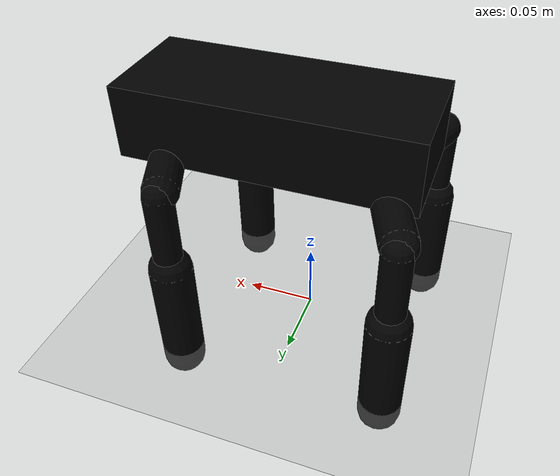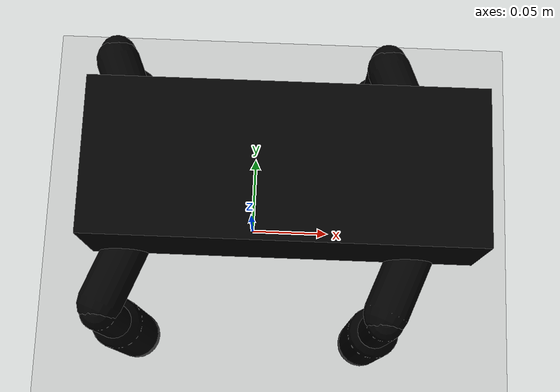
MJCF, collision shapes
<mujoco model="xgo">
  <compiler angle="radian" meshdir="XGO"/>
  <option gravity="0 0 -9.81" timestep="0.002" iterations="100"/>

  <default>
    <joint damping="2.0" armature="0.01"/>
    <geom contype="0" conaffinity="0"/>
    <position kp="40" forcerange="-25 25" ctrlrange="-1.57 1.57"/>
  </default>

  <asset>
    <texture name="floor_checker" type="2d" builtin="checker"
             rgb1="0.8 0.8 0.8" rgb2="0.5 0.5 0.5" width="512" height="512"/>
    <material name="floor_mat" texture="floor_checker" texrepeat="10 10" reflectance="0.0"/>

    <mesh name="base_link" content_type="model/stl" file="base_link.STL"/>
    <mesh name="lf_hip_link" content_type="model/stl" file="lf_hip_link.STL"/>
    <mesh name="lf_upper_leg_link" content_type="model/stl" file="lf_upper_leg_link.STL"/>
    <mesh name="lf_lower_leg_link" content_type="model/stl" file="lf_lower_leg_link.STL"/>
    <mesh name="rf_hip_link" content_type="model/stl" file="rf_hip_link.STL"/>
    <mesh name="rf_upper_leg_link" content_type="model/stl" file="rf_upper_leg_link.STL"/>
    <mesh name="rf_lower_leg_link" content_type="model/stl" file="rf_lower_leg_link.STL"/>
    <mesh name="lh_hip_link" content_type="model/stl" file="lh_hip_link.STL"/>
    <mesh name="lh_upper_leg_link" content_type="model/stl" file="lh_upper_leg_link.STL"/>
    <mesh name="lh_lower_leg_link" content_type="model/stl" file="lh_lower_leg_link.STL"/>
    <mesh name="rh_hip_link" content_type="model/stl" file="rh_hip_link.STL"/>
    <mesh name="rh_upper_leg_link" content_type="model/stl" file="rh_upper_leg_link.STL"/>
    <mesh name="rh_lower_leg_link" content_type="model/stl" file="rh_lower_leg_link.STL"/>
    <mesh name="camera_link" content_type="model/stl" file="camera_link.STL"/>
    <mesh name="laser_link" content_type="model/stl" file="laser_link.STL"/>
  </asset>

  <worldbody>
    <geom name="floor"
          type="plane"
          pos="0 0 0"
          size="20 20 0.1"
          material="floor_mat"
          contype="1"
          conaffinity="1"
          friction="2.0 0.5 0.5"/>

    <body name="base" pos="0 0 0.108">
      <freejoint/>
      <camera name="track" mode="trackcom" pos="0 -3.0 1.5" xyaxes="1 0 0 0 1 2"/>
      <!-- added a site for the imu on the robot to sit for sensor data -->
      <site name="imu_site" pos="0 0 0.02" size="0.01"/>

      <!-- inercia aproximada para debug -->
      <inertial pos="0 0 0.02"
                mass="0.8"
                diaginertia="0.003 0.008 0.009"/>

      <!-- visual -->
      <geom pos="0 0 0.01" quat="1 0 0 0" type="mesh" rgba="0.529412 0.54902 0.54902 1" mesh="base_link"/>
      <geom pos="0.075751 0 0.069653" type="mesh" rgba="0.054902 0.054902 0.054902 1" mesh="camera_link"/>
      <geom pos="-0.016732 4.4164e-05 0.11335" quat="1 0 0 0" type="mesh" rgba="1 1 1 1" mesh="laser_link"/>

      <!-- colisión simple base -->
      <geom type="box" pos="0.02 0 0.05" size="0.1 0.04 0.025"
            rgba="0 0 0 0" contype="1" conaffinity="1"/>

      <!-- LF -->
      <body name="lf_hip_link" pos="0.09332 0.022407 0.02454">
        <inertial pos="-0.013972 0.0250894 0.00927329"
                  quat="0.465985 0.505856 -0.63261 0.356052"
                  mass="0.0196003"
                  diaginertia="7.28129e-06 6.03463e-06 3.25491e-06"/>
        <joint name="lf_hip_joint" axis="-1 0 0" range="-1.57 1.57"/>
        <geom type="mesh" rgba="0.898039 0.917647 0.929412 1" mesh="lf_hip_link"/>
        <geom type="capsule" fromto="0 0 0 -0.018 0.045 0" size="0.012"
              rgba="0 0 0 0" contype="1" conaffinity="1"/>

        <body name="lf_upper_leg_link" pos="-0.018325 0.049313 0">
          <inertial pos="-0.00689428 -0.01867 -0.029948"
                    mass="0.0123429"
                    diaginertia="5.47497e-06 4.86024e-06 1.83455e-06"/>

          <joint name="lf_upper_leg_joint" axis="0 1 0" range="-1.57 1.57"/>
          <geom type="mesh" rgba="0.898039 0.917647 0.929412 1" mesh="lf_upper_leg_link"/>
          <geom type="capsule" fromto="0 0 0 0 0 -0.06" size="0.010"
                rgba="0 0 0 0" contype="1" conaffinity="1"/>

          <body name="lf_lower_leg_link" pos="0 -0.00072 -0.059896">
            <inertial pos="-0.0167812 -0.018325 -0.0316239"
                      quat="0.999267 0 0.0382793 0"
                      mass="0.0226879"
                      diaginertia="1.41901e-05 1.36483e-05 1.31741e-06"/>
            <joint name="lf_lower_leg_joint" axis="0 1 0" range="-1.57 1.57"/>
            <geom type="mesh" rgba="0.898039 0.917647 0.929412 1" mesh="lf_lower_leg_link"/>
            <geom type="capsule" fromto="0 0 0 0 0 -0.085" size="0.015"
                  rgba="0 0 0 0" contype="1" conaffinity="1"
                  friction="2.0 0.5 0.1"/>

          </body>
        </body>
      </body>

      <!-- RF -->
      <body name="rf_hip_link" pos="0.09332 -0.022517 0.02454">
        <inertial pos="-0.013972 -0.0250894 0.00927328"
                  quat="0.505856 0.465985 -0.356051 0.63261"
                  mass="0.00980013"
                  diaginertia="3.64065e-06 3.01731e-06 1.62745e-06"/>
        <joint name="rf_hip_joint" axis="-1 0 0" range="-1.57 1.57"/>
        <geom type="mesh" rgba="0.898039 0.917647 0.929412 1" mesh="rf_hip_link"/>
        <geom type="capsule" fromto="0 0 0 -0.018 -0.045 0" size="0.012"
              rgba="0 0 0 0" contype="1" conaffinity="1"/>

        <body name="rf_upper_leg_link" pos="-0.018325 -0.049313 0">
          <inertial pos="-0.00689428 0.0187 -0.029948"
                    mass="0.0123429"
                    diaginertia="5.47497e-06 4.86024e-06 1.83455e-06"/>
          <joint name="rf_upper_leg_joint" axis="0 1 0" range="-1.57 1.57"/>
          <geom type="mesh" rgba="0.898039 0.917647 0.929412 1" mesh="rf_upper_leg_link"/>
          <geom type="capsule" fromto="0 0 0 0 0 -0.06" size="0.010"
                rgba="0 0 0 0" contype="1" conaffinity="1"/>

          <body name="rf_lower_leg_link" pos="0 0 -0.059896">
            <inertial pos="-0.0167812 0.018325 -0.0316239"
                      quat="0.999267 0 0.0382793 0"
                      mass="0.0226879"
                      diaginertia="1.41901e-05 1.36483e-05 1.31741e-06"/>
            <joint name="rf_lower_leg_joint" axis="0 1 0" range="-1.57 1.57"/>
            <geom type="mesh" rgba="0.898039 0.917647 0.929412 1" mesh="rf_lower_leg_link"/>
            <geom type="capsule" fromto="0 0 0 0 0 -0.085" size="0.015"
                  rgba="0 0 0 0" contype="1" conaffinity="1"
                  friction="2.0 0.5 0.1"/>
          </body>
        </body>
      </body>

      <!-- LH -->
      <body name="lh_hip_link" pos="-0.05668 0.022407 0.02454">
        <inertial pos="-0.013972 0.0250894 0.00927329"
                  quat="0.465985 0.505856 -0.63261 0.356052"
                  mass="0.0196003"
                  diaginertia="7.28129e-06 6.03463e-06 3.25491e-06"/>
        <joint name="lh_hip_joint" axis="1 0 0" range="-1.57 1.57"/>
        <geom type="mesh" rgba="0.898039 0.917647 0.929412 1" mesh="lh_hip_link"/>
        <geom type="capsule" fromto="0 0 0 -0.018 0.045 0" size="0.012"
              rgba="0 0 0 0" contype="1" conaffinity="1"/>

        <body name="lh_upper_leg_link" pos="-0.018325 0.0493131 0">
          <inertial pos="-0.00689428 -0.01867 -0.029948"
                    mass="0.0123429"
                    diaginertia="5.47497e-06 4.86024e-06 1.83455e-06"/>
          <joint name="lh_upper_leg_joint" axis="0 1 0" range="-1.57 1.57"/>
          <geom type="mesh" rgba="0.898039 0.917647 0.929412 1" mesh="lh_upper_leg_link"/>
          <geom type="capsule" fromto="0 0 0 0 0 -0.06" size="0.010"
                rgba="0 0 0 0" contype="1" conaffinity="1"/>

          <body name="lh_lower_leg_link" pos="0 -0.00072 -0.059896">
            <inertial pos="-0.0167812 -0.018325 -0.0316239"
                      quat="0.999267 0 0.0382793 0"
                      mass="0.0226879"
                      diaginertia="1.41901e-05 1.36483e-05 1.31741e-06"/>
            <joint name="lh_lower_leg_joint" axis="0 1 0" range="-1.57 1.57"/>
            <geom type="mesh" rgba="0.898039 0.917647 0.929412 1" mesh="lh_lower_leg_link"/>
            <geom type="capsule" fromto="0 0 0 0 0 -0.085" size="0.015"
                  rgba="0 0 0 0" contype="1" conaffinity="1"
                  friction="2.0 0.5 0.1"/>
          </body>
        </body>
      </body>

      <!-- RH -->
      <body name="rh_hip_link" pos="-0.05668 -0.022517 0.02454">
        <inertial pos="-0.013972 -0.0250894 0.00927328"
                  quat="0.505856 0.465985 -0.356051 0.63261"
                  mass="0.00980013"
                  diaginertia="3.64065e-06 3.01731e-06 1.62745e-06"/>
        <joint name="rh_hip_joint" axis="1 0 0" range="-1.57 1.57"/>
        <geom type="mesh" rgba="0.898039 0.917647 0.929412 1" mesh="rh_hip_link"/>
        <geom type="capsule" fromto="0 0 0 -0.018 -0.045 0" size="0.012"
              rgba="0 0 0 0" contype="1" conaffinity="1"/>

        <body name="rh_upper_leg_link" pos="-0.018325 -0.049313 0">
          <inertial pos="-0.00689428 0.0187 -0.029948"
                    mass="0.0123429"
                    diaginertia="5.47497e-06 4.86024e-06 1.83455e-06"/>
          <joint name="rh_upper_leg_joint" axis="0 1 0" range="-1.57 1.57"/>
          <geom type="mesh" rgba="0.898039 0.917647 0.929412 1" mesh="rh_upper_leg_link"/>
          <geom type="capsule" fromto="0 0 0 0 0 -0.06" size="0.010"
                rgba="0 0 0 0" contype="1" conaffinity="1"/>

          <body name="rh_lower_leg_link" pos="0 0 -0.059896">
            <inertial pos="-0.0167812 0.018325 -0.0316239"
                      quat="0.999267 0 0.0382793 0"
                      mass="0.0226879"
                      diaginertia="1.41901e-05 1.36483e-05 1.31741e-06"/>
            <joint name="rh_lower_leg_joint" axis="0 1 0" range="-1.57 1.57"/>
            <geom type="mesh" rgba="0.898039 0.917647 0.929412 1" mesh="rh_lower_leg_link"/>
            <geom type="capsule" fromto="0 0 0 0 0 -0.085" size="0.015"
                  rgba="0 0 0 0" contype="1" conaffinity="1"
                  friction="2.0 0.5 0.1"/>
          </body>
        </body>
      </body>
    </body>
  </worldbody>

  <!-- sensor data mimicking IMU on real robot-->

  <sensor>
    <gyro name="imu_gyro" site="imu_site"/>
    <accelerometer name="imu_accel" site="imu_site"/>
    <framequat name="imu_quat" objtype="site" objname="imu_site"/>
  </sensor>

  <actuator>
    <position joint="lf_hip_joint" kp="35"/>
    <position joint="lf_upper_leg_joint" kp="55"/>
    <position joint="lf_lower_leg_joint" kp="55"/>

    <position joint="rf_hip_joint" kp="35"/>
    <position joint="rf_upper_leg_joint" kp="55"/>
    <position joint="rf_lower_leg_joint" kp="55"/>

    <position joint="lh_hip_joint" kp="35"/>
    <position joint="lh_upper_leg_joint" kp="55"/>
    <position joint="lh_lower_leg_joint" kp="55"/>

    <position joint="rh_hip_joint" kp="35"/>
    <position joint="rh_upper_leg_joint" kp="55"/>
    <position joint="rh_lower_leg_joint" kp="55"/>
  </actuator>

  <keyframe>
    <key name="stand"
         qpos="0 0 0.108 1 0 0 0   0 0.65 -1.10   0 0.65 -1.10   0 0.65 -1.10   0 0.65 -1.10"
         ctrl="0 0.65 -1.10   0 0.65 -1.10   0 0.65 -1.10   0 0.65 -1.10"/>
  </keyframe>
</mujoco>
